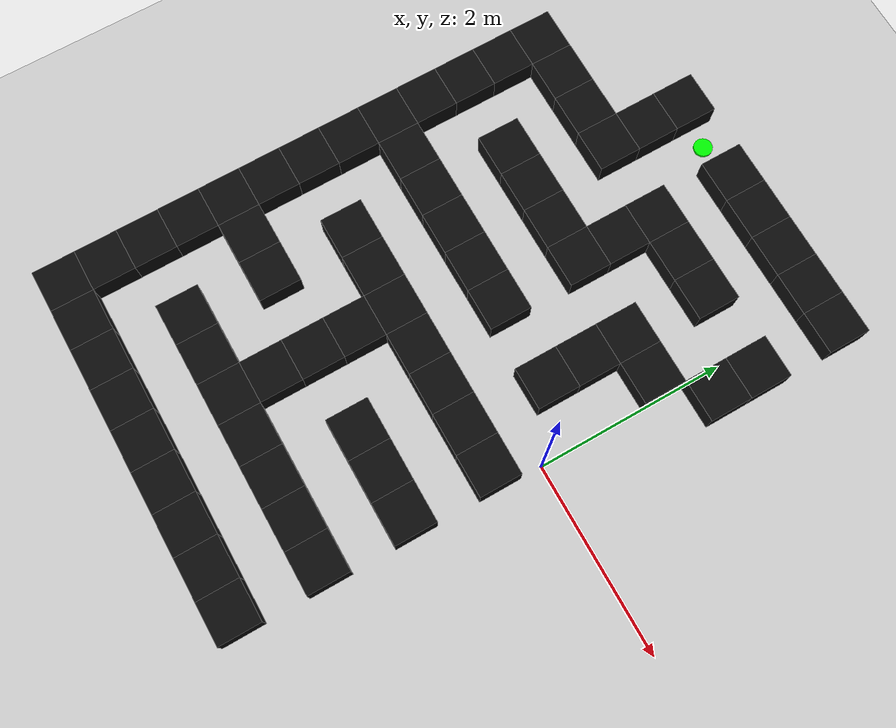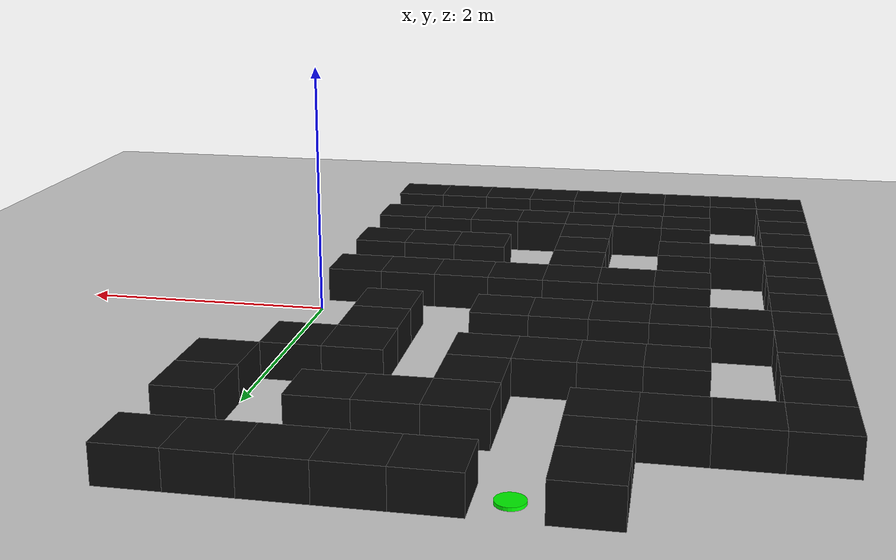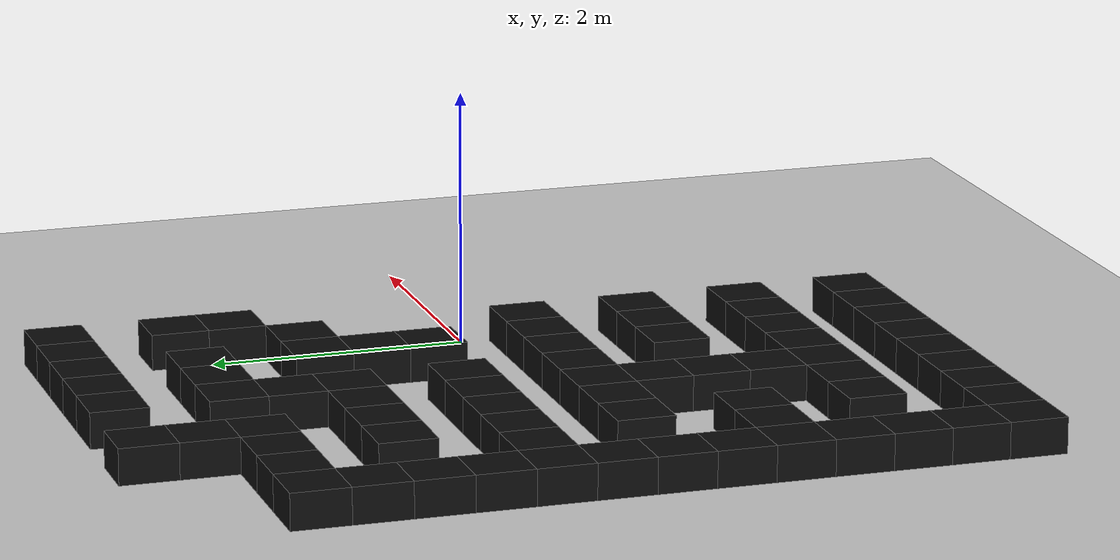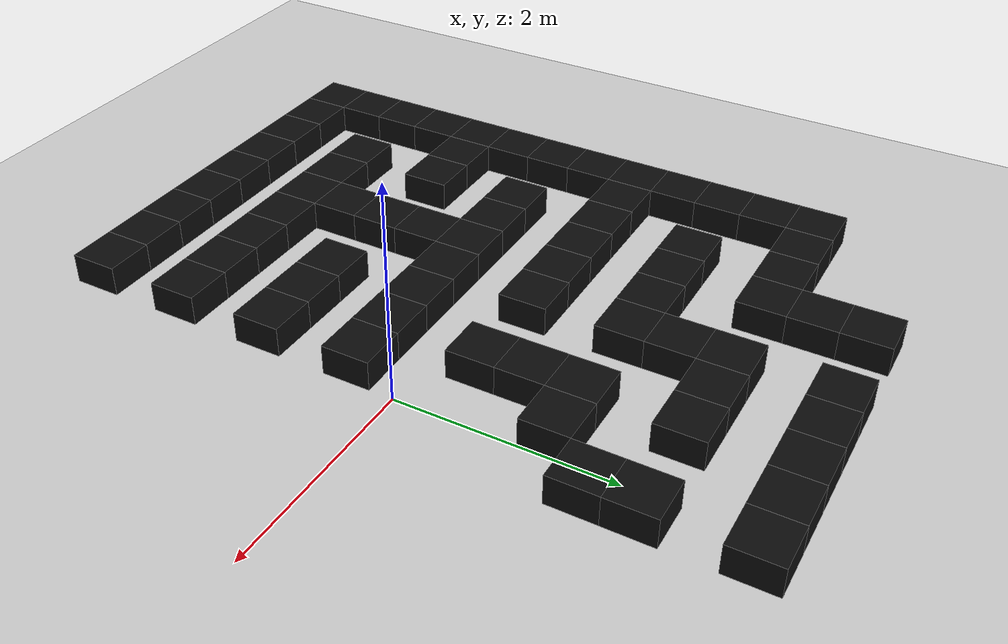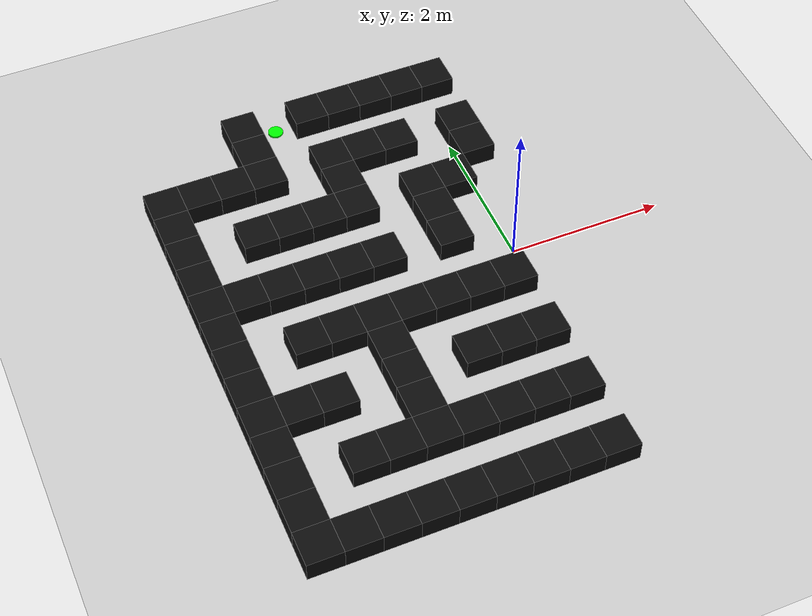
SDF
<sdf version="1.9">
 <world name="complex_maze_world">
  <model name="ground_plane">
   <static>true</static>
   <link name="link">
    <collision name="collision">
     <geometry><plane><normal>0 0 1</normal><size>30 30</size></plane></geometry>
    </collision>
    <visual name="visual">
     <geometry><plane><normal>0 0 1</normal><size>30 30</size></plane></geometry>
     <material><ambient>0.82 0.82 0.82 1</ambient><diffuse>0.82 0.82 0.82 1</diffuse></material>
    </visual>
   </link>
  </model>
  <model name="wall_0">
   <static>true</static>
   <pose>-2.475 3.150 0.140 0 0 0</pose>
   <link name="link">
    <collision name="collision"><geometry><box><size>0.450 0.450 0.280</size></box></geometry></collision>
    <visual name="visual">
     <geometry><box><size>0.450 0.450 0.280</size></box></geometry>
     <material><ambient>0.05 0.05 0.05 1</ambient><diffuse>0.05 0.05 0.05 1</diffuse></material>
    </visual>
   </link>
  </model>
  <model name="start_marker">
   <static>true</static>
   <pose>-2.025 3.150 0.012 0 0 0</pose>
   <link name="link">
    <visual name="visual">
     <geometry><cylinder><radius>0.099</radius><length>0.024</length></cylinder></geometry>
     <material><ambient>0 1 0 1</ambient><diffuse>0 1 0 1</diffuse></material>
    </visual>
   </link>
  </model>
  <model name="wall_1">
   <static>true</static>
   <pose>-1.575 3.150 0.140 0 0 0</pose>
   <link name="link">
    <collision name="collision"><geometry><box><size>0.450 0.450 0.280</size></box></geometry></collision>
    <visual name="visual">
     <geometry><box><size>0.450 0.450 0.280</size></box></geometry>
     <material><ambient>0.05 0.05 0.05 1</ambient><diffuse>0.05 0.05 0.05 1</diffuse></material>
    </visual>
   </link>
  </model>
  <model name="wall_2">
   <static>true</static>
   <pose>-1.125 3.150 0.140 0 0 0</pose>
   <link name="link">
    <collision name="collision"><geometry><box><size>0.450 0.450 0.280</size></box></geometry></collision>
    <visual name="visual">
     <geometry><box><size>0.450 0.450 0.280</size></box></geometry>
     <material><ambient>0.05 0.05 0.05 1</ambient><diffuse>0.05 0.05 0.05 1</diffuse></material>
    </visual>
   </link>
  </model>
  <model name="wall_3">
   <static>true</static>
   <pose>-0.675 3.150 0.140 0 0 0</pose>
   <link name="link">
    <collision name="collision"><geometry><box><size>0.450 0.450 0.280</size></box></geometry></collision>
    <visual name="visual">
     <geometry><box><size>0.450 0.450 0.280</size></box></geometry>
     <material><ambient>0.05 0.05 0.05 1</ambient><diffuse>0.05 0.05 0.05 1</diffuse></material>
    </visual>
   </link>
  </model>
  <model name="wall_4">
   <static>true</static>
   <pose>-0.225 3.150 0.140 0 0 0</pose>
   <link name="link">
    <collision name="collision"><geometry><box><size>0.450 0.450 0.280</size></box></geometry></collision>
    <visual name="visual">
     <geometry><box><size>0.450 0.450 0.280</size></box></geometry>
     <material><ambient>0.05 0.05 0.05 1</ambient><diffuse>0.05 0.05 0.05 1</diffuse></material>
    </visual>
   </link>
  </model>
  <model name="wall_5">
   <static>true</static>
   <pose>0.225 3.150 0.140 0 0 0</pose>
   <link name="link">
    <collision name="collision"><geometry><box><size>0.450 0.450 0.280</size></box></geometry></collision>
    <visual name="visual">
     <geometry><box><size>0.450 0.450 0.280</size></box></geometry>
     <material><ambient>0.05 0.05 0.05 1</ambient><diffuse>0.05 0.05 0.05 1</diffuse></material>
    </visual>
   </link>
  </model>
  <model name="wall_14">
   <static>true</static>
   <pose>-2.475 2.700 0.140 0 0 0</pose>
   <link name="link">
    <collision name="collision"><geometry><box><size>0.450 0.450 0.280</size></box></geometry></collision>
    <visual name="visual">
     <geometry><box><size>0.450 0.450 0.280</size></box></geometry>
     <material><ambient>0.05 0.05 0.05 1</ambient><diffuse>0.05 0.05 0.05 1</diffuse></material>
    </visual>
   </link>
  </model>
  <model name="wall_18">
   <static>true</static>
   <pose>-3.825 2.250 0.140 0 0 0</pose>
   <link name="link">
    <collision name="collision"><geometry><box><size>0.450 0.450 0.280</size></box></geometry></collision>
    <visual name="visual">
     <geometry><box><size>0.450 0.450 0.280</size></box></geometry>
     <material><ambient>0.05 0.05 0.05 1</ambient><diffuse>0.05 0.05 0.05 1</diffuse></material>
    </visual>
   </link>
  </model>
  <model name="wall_19">
   <static>true</static>
   <pose>-3.375 2.250 0.140 0 0 0</pose>
   <link name="link">
    <collision name="collision"><geometry><box><size>0.450 0.450 0.280</size></box></geometry></collision>
    <visual name="visual">
     <geometry><box><size>0.450 0.450 0.280</size></box></geometry>
     <material><ambient>0.05 0.05 0.05 1</ambient><diffuse>0.05 0.05 0.05 1</diffuse></material>
    </visual>
   </link>
  </model>
  <model name="wall_20">
   <static>true</static>
   <pose>-2.925 2.250 0.140 0 0 0</pose>
   <link name="link">
    <collision name="collision"><geometry><box><size>0.450 0.450 0.280</size></box></geometry></collision>
    <visual name="visual">
     <geometry><box><size>0.450 0.450 0.280</size></box></geometry>
     <material><ambient>0.05 0.05 0.05 1</ambient><diffuse>0.05 0.05 0.05 1</diffuse></material>
    </visual>
   </link>
  </model>
  <model name="wall_21">
   <static>true</static>
   <pose>-2.475 2.250 0.140 0 0 0</pose>
   <link name="link">
    <collision name="collision"><geometry><box><size>0.450 0.450 0.280</size></box></geometry></collision>
    <visual name="visual">
     <geometry><box><size>0.450 0.450 0.280</size></box></geometry>
     <material><ambient>0.05 0.05 0.05 1</ambient><diffuse>0.05 0.05 0.05 1</diffuse></material>
    </visual>
   </link>
  </model>
  <model name="wall_22">
   <static>true</static>
   <pose>-1.575 2.250 0.140 0 0 0</pose>
   <link name="link">
    <collision name="collision"><geometry><box><size>0.450 0.450 0.280</size></box></geometry></collision>
    <visual name="visual">
     <geometry><box><size>0.450 0.450 0.280</size></box></geometry>
     <material><ambient>0.05 0.05 0.05 1</ambient><diffuse>0.05 0.05 0.05 1</diffuse></material>
    </visual>
   </link>
  </model>
  <model name="wall_23">
   <static>true</static>
   <pose>-1.125 2.250 0.140 0 0 0</pose>
   <link name="link">
    <collision name="collision"><geometry><box><size>0.450 0.450 0.280</size></box></geometry></collision>
    <visual name="visual">
     <geometry><box><size>0.450 0.450 0.280</size></box></geometry>
     <material><ambient>0.05 0.05 0.05 1</ambient><diffuse>0.05 0.05 0.05 1</diffuse></material>
    </visual>
   </link>
  </model>
  <model name="wall_24">
   <static>true</static>
   <pose>-0.675 2.250 0.140 0 0 0</pose>
   <link name="link">
    <collision name="collision"><geometry><box><size>0.450 0.450 0.280</size></box></geometry></collision>
    <visual name="visual">
     <geometry><box><size>0.450 0.450 0.280</size></box></geometry>
     <material><ambient>0.05 0.05 0.05 1</ambient><diffuse>0.05 0.05 0.05 1</diffuse></material>
    </visual>
   </link>
  </model>
  <model name="wall_25">
   <static>true</static>
   <pose>0.225 2.250 0.140 0 0 0</pose>
   <link name="link">
    <collision name="collision"><geometry><box><size>0.450 0.450 0.280</size></box></geometry></collision>
    <visual name="visual">
     <geometry><box><size>0.450 0.450 0.280</size></box></geometry>
     <material><ambient>0.05 0.05 0.05 1</ambient><diffuse>0.05 0.05 0.05 1</diffuse></material>
    </visual>
   </link>
  </model>
  <model name="wall_31">
   <static>true</static>
   <pose>-3.825 1.800 0.140 0 0 0</pose>
   <link name="link">
    <collision name="collision"><geometry><box><size>0.450 0.450 0.280</size></box></geometry></collision>
    <visual name="visual">
     <geometry><box><size>0.450 0.450 0.280</size></box></geometry>
     <material><ambient>0.05 0.05 0.05 1</ambient><diffuse>0.05 0.05 0.05 1</diffuse></material>
    </visual>
   </link>
  </model>
  <model name="wall_32">
   <static>true</static>
   <pose>-1.575 1.800 0.140 0 0 0</pose>
   <link name="link">
    <collision name="collision"><geometry><box><size>0.450 0.450 0.280</size></box></geometry></collision>
    <visual name="visual">
     <geometry><box><size>0.450 0.450 0.280</size></box></geometry>
     <material><ambient>0.05 0.05 0.05 1</ambient><diffuse>0.05 0.05 0.05 1</diffuse></material>
    </visual>
   </link>
  </model>
  <model name="wall_33">
   <static>true</static>
   <pose>0.225 1.800 0.140 0 0 0</pose>
   <link name="link">
    <collision name="collision"><geometry><box><size>0.450 0.450 0.280</size></box></geometry></collision>
    <visual name="visual">
     <geometry><box><size>0.450 0.450 0.280</size></box></geometry>
     <material><ambient>0.05 0.05 0.05 1</ambient><diffuse>0.05 0.05 0.05 1</diffuse></material>
    </visual>
   </link>
  </model>
  <model name="wall_35">
   <static>true</static>
   <pose>-3.825 1.350 0.140 0 0 0</pose>
   <link name="link">
    <collision name="collision"><geometry><box><size>0.450 0.450 0.280</size></box></geometry></collision>
    <visual name="visual">
     <geometry><box><size>0.450 0.450 0.280</size></box></geometry>
     <material><ambient>0.05 0.05 0.05 1</ambient><diffuse>0.05 0.05 0.05 1</diffuse></material>
    </visual>
   </link>
  </model>
  <model name="wall_36">
   <static>true</static>
   <pose>-2.925 1.350 0.140 0 0 0</pose>
   <link name="link">
    <collision name="collision"><geometry><box><size>0.450 0.450 0.280</size></box></geometry></collision>
    <visual name="visual">
     <geometry><box><size>0.450 0.450 0.280</size></box></geometry>
     <material><ambient>0.05 0.05 0.05 1</ambient><diffuse>0.05 0.05 0.05 1</diffuse></material>
    </visual>
   </link>
  </model>
  <model name="wall_37">
   <static>true</static>
   <pose>-2.475 1.350 0.140 0 0 0</pose>
   <link name="link">
    <collision name="collision"><geometry><box><size>0.450 0.450 0.280</size></box></geometry></collision>
    <visual name="visual">
     <geometry><box><size>0.450 0.450 0.280</size></box></geometry>
     <material><ambient>0.05 0.05 0.05 1</ambient><diffuse>0.05 0.05 0.05 1</diffuse></material>
    </visual>
   </link>
  </model>
  <model name="wall_38">
   <static>true</static>
   <pose>-2.025 1.350 0.140 0 0 0</pose>
   <link name="link">
    <collision name="collision"><geometry><box><size>0.450 0.450 0.280</size></box></geometry></collision>
    <visual name="visual">
     <geometry><box><size>0.450 0.450 0.280</size></box></geometry>
     <material><ambient>0.05 0.05 0.05 1</ambient><diffuse>0.05 0.05 0.05 1</diffuse></material>
    </visual>
   </link>
  </model>
  <model name="wall_39">
   <static>true</static>
   <pose>-1.575 1.350 0.140 0 0 0</pose>
   <link name="link">
    <collision name="collision"><geometry><box><size>0.450 0.450 0.280</size></box></geometry></collision>
    <visual name="visual">
     <geometry><box><size>0.450 0.450 0.280</size></box></geometry>
     <material><ambient>0.05 0.05 0.05 1</ambient><diffuse>0.05 0.05 0.05 1</diffuse></material>
    </visual>
   </link>
  </model>
  <model name="wall_40">
   <static>true</static>
   <pose>-0.675 1.350 0.140 0 0 0</pose>
   <link name="link">
    <collision name="collision"><geometry><box><size>0.450 0.450 0.280</size></box></geometry></collision>
    <visual name="visual">
     <geometry><box><size>0.450 0.450 0.280</size></box></geometry>
     <material><ambient>0.05 0.05 0.05 1</ambient><diffuse>0.05 0.05 0.05 1</diffuse></material>
    </visual>
   </link>
  </model>
  <model name="wall_41">
   <static>true</static>
   <pose>-0.225 1.350 0.140 0 0 0</pose>
   <link name="link">
    <collision name="collision"><geometry><box><size>0.450 0.450 0.280</size></box></geometry></collision>
    <visual name="visual">
     <geometry><box><size>0.450 0.450 0.280</size></box></geometry>
     <material><ambient>0.05 0.05 0.05 1</ambient><diffuse>0.05 0.05 0.05 1</diffuse></material>
    </visual>
   </link>
  </model>
  <model name="wall_49">
   <static>true</static>
   <pose>-3.825 0.900 0.140 0 0 0</pose>
   <link name="link">
    <collision name="collision"><geometry><box><size>0.450 0.450 0.280</size></box></geometry></collision>
    <visual name="visual">
     <geometry><box><size>0.450 0.450 0.280</size></box></geometry>
     <material><ambient>0.05 0.05 0.05 1</ambient><diffuse>0.05 0.05 0.05 1</diffuse></material>
    </visual>
   </link>
  </model>
  <model name="wall_50">
   <static>true</static>
   <pose>-0.675 0.900 0.140 0 0 0</pose>
   <link name="link">
    <collision name="collision"><geometry><box><size>0.450 0.450 0.280</size></box></geometry></collision>
    <visual name="visual">
     <geometry><box><size>0.450 0.450 0.280</size></box></geometry>
     <material><ambient>0.05 0.05 0.05 1</ambient><diffuse>0.05 0.05 0.05 1</diffuse></material>
    </visual>
   </link>
  </model>
  <model name="wall_53">
   <static>true</static>
   <pose>-3.825 0.450 0.140 0 0 0</pose>
   <link name="link">
    <collision name="collision"><geometry><box><size>0.450 0.450 0.280</size></box></geometry></collision>
    <visual name="visual">
     <geometry><box><size>0.450 0.450 0.280</size></box></geometry>
     <material><ambient>0.05 0.05 0.05 1</ambient><diffuse>0.05 0.05 0.05 1</diffuse></material>
    </visual>
   </link>
  </model>
  <model name="wall_54">
   <static>true</static>
   <pose>-3.375 0.450 0.140 0 0 0</pose>
   <link name="link">
    <collision name="collision"><geometry><box><size>0.450 0.450 0.280</size></box></geometry></collision>
    <visual name="visual">
     <geometry><box><size>0.450 0.450 0.280</size></box></geometry>
     <material><ambient>0.05 0.05 0.05 1</ambient><diffuse>0.05 0.05 0.05 1</diffuse></material>
    </visual>
   </link>
  </model>
  <model name="wall_55">
   <static>true</static>
   <pose>-2.925 0.450 0.140 0 0 0</pose>
   <link name="link">
    <collision name="collision"><geometry><box><size>0.450 0.450 0.280</size></box></geometry></collision>
    <visual name="visual">
     <geometry><box><size>0.450 0.450 0.280</size></box></geometry>
     <material><ambient>0.05 0.05 0.05 1</ambient><diffuse>0.05 0.05 0.05 1</diffuse></material>
    </visual>
   </link>
  </model>
  <model name="wall_56">
   <static>true</static>
   <pose>-2.475 0.450 0.140 0 0 0</pose>
   <link name="link">
    <collision name="collision"><geometry><box><size>0.450 0.450 0.280</size></box></geometry></collision>
    <visual name="visual">
     <geometry><box><size>0.450 0.450 0.280</size></box></geometry>
     <material><ambient>0.05 0.05 0.05 1</ambient><diffuse>0.05 0.05 0.05 1</diffuse></material>
    </visual>
   </link>
  </model>
  <model name="wall_57">
   <static>true</static>
   <pose>-2.025 0.450 0.140 0 0 0</pose>
   <link name="link">
    <collision name="collision"><geometry><box><size>0.450 0.450 0.280</size></box></geometry></collision>
    <visual name="visual">
     <geometry><box><size>0.450 0.450 0.280</size></box></geometry>
     <material><ambient>0.05 0.05 0.05 1</ambient><diffuse>0.05 0.05 0.05 1</diffuse></material>
    </visual>
   </link>
  </model>
  <model name="wall_58">
   <static>true</static>
   <pose>-1.575 0.450 0.140 0 0 0</pose>
   <link name="link">
    <collision name="collision"><geometry><box><size>0.450 0.450 0.280</size></box></geometry></collision>
    <visual name="visual">
     <geometry><box><size>0.450 0.450 0.280</size></box></geometry>
     <material><ambient>0.05 0.05 0.05 1</ambient><diffuse>0.05 0.05 0.05 1</diffuse></material>
    </visual>
   </link>
  </model>
  <model name="wall_59">
   <static>true</static>
   <pose>-0.675 0.450 0.140 0 0 0</pose>
   <link name="link">
    <collision name="collision"><geometry><box><size>0.450 0.450 0.280</size></box></geometry></collision>
    <visual name="visual">
     <geometry><box><size>0.450 0.450 0.280</size></box></geometry>
     <material><ambient>0.05 0.05 0.05 1</ambient><diffuse>0.05 0.05 0.05 1</diffuse></material>
    </visual>
   </link>
  </model>
  <model name="wall_68">
   <static>true</static>
   <pose>-3.825 0.000 0.140 0 0 0</pose>
   <link name="link">
    <collision name="collision"><geometry><box><size>0.450 0.450 0.280</size></box></geometry></collision>
    <visual name="visual">
     <geometry><box><size>0.450 0.450 0.280</size></box></geometry>
     <material><ambient>0.05 0.05 0.05 1</ambient><diffuse>0.05 0.05 0.05 1</diffuse></material>
    </visual>
   </link>
  </model>
  <model name="wall_71">
   <static>true</static>
   <pose>-3.825 -0.450 0.140 0 0 0</pose>
   <link name="link">
    <collision name="collision"><geometry><box><size>0.450 0.450 0.280</size></box></geometry></collision>
    <visual name="visual">
     <geometry><box><size>0.450 0.450 0.280</size></box></geometry>
     <material><ambient>0.05 0.05 0.05 1</ambient><diffuse>0.05 0.05 0.05 1</diffuse></material>
    </visual>
   </link>
  </model>
  <model name="wall_72">
   <static>true</static>
   <pose>-2.925 -0.450 0.140 0 0 0</pose>
   <link name="link">
    <collision name="collision"><geometry><box><size>0.450 0.450 0.280</size></box></geometry></collision>
    <visual name="visual">
     <geometry><box><size>0.450 0.450 0.280</size></box></geometry>
     <material><ambient>0.05 0.05 0.05 1</ambient><diffuse>0.05 0.05 0.05 1</diffuse></material>
    </visual>
   </link>
  </model>
  <model name="wall_73">
   <static>true</static>
   <pose>-2.475 -0.450 0.140 0 0 0</pose>
   <link name="link">
    <collision name="collision"><geometry><box><size>0.450 0.450 0.280</size></box></geometry></collision>
    <visual name="visual">
     <geometry><box><size>0.450 0.450 0.280</size></box></geometry>
     <material><ambient>0.05 0.05 0.05 1</ambient><diffuse>0.05 0.05 0.05 1</diffuse></material>
    </visual>
   </link>
  </model>
  <model name="wall_74">
   <static>true</static>
   <pose>-2.025 -0.450 0.140 0 0 0</pose>
   <link name="link">
    <collision name="collision"><geometry><box><size>0.450 0.450 0.280</size></box></geometry></collision>
    <visual name="visual">
     <geometry><box><size>0.450 0.450 0.280</size></box></geometry>
     <material><ambient>0.05 0.05 0.05 1</ambient><diffuse>0.05 0.05 0.05 1</diffuse></material>
    </visual>
   </link>
  </model>
  <model name="wall_75">
   <static>true</static>
   <pose>-1.575 -0.450 0.140 0 0 0</pose>
   <link name="link">
    <collision name="collision"><geometry><box><size>0.450 0.450 0.280</size></box></geometry></collision>
    <visual name="visual">
     <geometry><box><size>0.450 0.450 0.280</size></box></geometry>
     <material><ambient>0.05 0.05 0.05 1</ambient><diffuse>0.05 0.05 0.05 1</diffuse></material>
    </visual>
   </link>
  </model>
  <model name="wall_76">
   <static>true</static>
   <pose>-1.125 -0.450 0.140 0 0 0</pose>
   <link name="link">
    <collision name="collision"><geometry><box><size>0.450 0.450 0.280</size></box></geometry></collision>
    <visual name="visual">
     <geometry><box><size>0.450 0.450 0.280</size></box></geometry>
     <material><ambient>0.05 0.05 0.05 1</ambient><diffuse>0.05 0.05 0.05 1</diffuse></material>
    </visual>
   </link>
  </model>
  <model name="wall_77">
   <static>true</static>
   <pose>-0.675 -0.450 0.140 0 0 0</pose>
   <link name="link">
    <collision name="collision"><geometry><box><size>0.450 0.450 0.280</size></box></geometry></collision>
    <visual name="visual">
     <geometry><box><size>0.450 0.450 0.280</size></box></geometry>
     <material><ambient>0.05 0.05 0.05 1</ambient><diffuse>0.05 0.05 0.05 1</diffuse></material>
    </visual>
   </link>
  </model>
  <model name="wall_78">
   <static>true</static>
   <pose>-0.225 -0.450 0.140 0 0 0</pose>
   <link name="link">
    <collision name="collision"><geometry><box><size>0.450 0.450 0.280</size></box></geometry></collision>
    <visual name="visual">
     <geometry><box><size>0.450 0.450 0.280</size></box></geometry>
     <material><ambient>0.05 0.05 0.05 1</ambient><diffuse>0.05 0.05 0.05 1</diffuse></material>
    </visual>
   </link>
  </model>
  <model name="wall_85">
   <static>true</static>
   <pose>-3.825 -0.900 0.140 0 0 0</pose>
   <link name="link">
    <collision name="collision"><geometry><box><size>0.450 0.450 0.280</size></box></geometry></collision>
    <visual name="visual">
     <geometry><box><size>0.450 0.450 0.280</size></box></geometry>
     <material><ambient>0.05 0.05 0.05 1</ambient><diffuse>0.05 0.05 0.05 1</diffuse></material>
    </visual>
   </link>
  </model>
  <model name="wall_86">
   <static>true</static>
   <pose>-2.025 -0.900 0.140 0 0 0</pose>
   <link name="link">
    <collision name="collision"><geometry><box><size>0.450 0.450 0.280</size></box></geometry></collision>
    <visual name="visual">
     <geometry><box><size>0.450 0.450 0.280</size></box></geometry>
     <material><ambient>0.05 0.05 0.05 1</ambient><diffuse>0.05 0.05 0.05 1</diffuse></material>
    </visual>
   </link>
  </model>
  <model name="wall_91">
   <static>true</static>
   <pose>-3.825 -1.350 0.140 0 0 0</pose>
   <link name="link">
    <collision name="collision"><geometry><box><size>0.450 0.450 0.280</size></box></geometry></collision>
    <visual name="visual">
     <geometry><box><size>0.450 0.450 0.280</size></box></geometry>
     <material><ambient>0.05 0.05 0.05 1</ambient><diffuse>0.05 0.05 0.05 1</diffuse></material>
    </visual>
   </link>
  </model>
  <model name="wall_92">
   <static>true</static>
   <pose>-3.375 -1.350 0.140 0 0 0</pose>
   <link name="link">
    <collision name="collision"><geometry><box><size>0.450 0.450 0.280</size></box></geometry></collision>
    <visual name="visual">
     <geometry><box><size>0.450 0.450 0.280</size></box></geometry>
     <material><ambient>0.05 0.05 0.05 1</ambient><diffuse>0.05 0.05 0.05 1</diffuse></material>
    </visual>
   </link>
  </model>
  <model name="wall_93">
   <static>true</static>
   <pose>-2.925 -1.350 0.140 0 0 0</pose>
   <link name="link">
    <collision name="collision"><geometry><box><size>0.450 0.450 0.280</size></box></geometry></collision>
    <visual name="visual">
     <geometry><box><size>0.450 0.450 0.280</size></box></geometry>
     <material><ambient>0.05 0.05 0.05 1</ambient><diffuse>0.05 0.05 0.05 1</diffuse></material>
    </visual>
   </link>
  </model>
  <model name="wall_94">
   <static>true</static>
   <pose>-2.025 -1.350 0.140 0 0 0</pose>
   <link name="link">
    <collision name="collision"><geometry><box><size>0.450 0.450 0.280</size></box></geometry></collision>
    <visual name="visual">
     <geometry><box><size>0.450 0.450 0.280</size></box></geometry>
     <material><ambient>0.05 0.05 0.05 1</ambient><diffuse>0.05 0.05 0.05 1</diffuse></material>
    </visual>
   </link>
  </model>
  <model name="wall_95">
   <static>true</static>
   <pose>-1.125 -1.350 0.140 0 0 0</pose>
   <link name="link">
    <collision name="collision"><geometry><box><size>0.450 0.450 0.280</size></box></geometry></collision>
    <visual name="visual">
     <geometry><box><size>0.450 0.450 0.280</size></box></geometry>
     <material><ambient>0.05 0.05 0.05 1</ambient><diffuse>0.05 0.05 0.05 1</diffuse></material>
    </visual>
   </link>
  </model>
  <model name="wall_96">
   <static>true</static>
   <pose>-0.675 -1.350 0.140 0 0 0</pose>
   <link name="link">
    <collision name="collision"><geometry><box><size>0.450 0.450 0.280</size></box></geometry></collision>
    <visual name="visual">
     <geometry><box><size>0.450 0.450 0.280</size></box></geometry>
     <material><ambient>0.05 0.05 0.05 1</ambient><diffuse>0.05 0.05 0.05 1</diffuse></material>
    </visual>
   </link>
  </model>
  <model name="wall_97">
   <static>true</static>
   <pose>-0.225 -1.350 0.140 0 0 0</pose>
   <link name="link">
    <collision name="collision"><geometry><box><size>0.450 0.450 0.280</size></box></geometry></collision>
    <visual name="visual">
     <geometry><box><size>0.450 0.450 0.280</size></box></geometry>
     <material><ambient>0.05 0.05 0.05 1</ambient><diffuse>0.05 0.05 0.05 1</diffuse></material>
    </visual>
   </link>
  </model>
  <model name="wall_105">
   <static>true</static>
   <pose>-3.825 -1.800 0.140 0 0 0</pose>
   <link name="link">
    <collision name="collision"><geometry><box><size>0.450 0.450 0.280</size></box></geometry></collision>
    <visual name="visual">
     <geometry><box><size>0.450 0.450 0.280</size></box></geometry>
     <material><ambient>0.05 0.05 0.05 1</ambient><diffuse>0.05 0.05 0.05 1</diffuse></material>
    </visual>
   </link>
  </model>
  <model name="wall_106">
   <static>true</static>
   <pose>-2.025 -1.800 0.140 0 0 0</pose>
   <link name="link">
    <collision name="collision"><geometry><box><size>0.450 0.450 0.280</size></box></geometry></collision>
    <visual name="visual">
     <geometry><box><size>0.450 0.450 0.280</size></box></geometry>
     <material><ambient>0.05 0.05 0.05 1</ambient><diffuse>0.05 0.05 0.05 1</diffuse></material>
    </visual>
   </link>
  </model>
  <model name="wall_108">
   <static>true</static>
   <pose>-3.825 -2.250 0.140 0 0 0</pose>
   <link name="link">
    <collision name="collision"><geometry><box><size>0.450 0.450 0.280</size></box></geometry></collision>
    <visual name="visual">
     <geometry><box><size>0.450 0.450 0.280</size></box></geometry>
     <material><ambient>0.05 0.05 0.05 1</ambient><diffuse>0.05 0.05 0.05 1</diffuse></material>
    </visual>
   </link>
  </model>
  <model name="wall_109">
   <static>true</static>
   <pose>-2.925 -2.250 0.140 0 0 0</pose>
   <link name="link">
    <collision name="collision"><geometry><box><size>0.450 0.450 0.280</size></box></geometry></collision>
    <visual name="visual">
     <geometry><box><size>0.450 0.450 0.280</size></box></geometry>
     <material><ambient>0.05 0.05 0.05 1</ambient><diffuse>0.05 0.05 0.05 1</diffuse></material>
    </visual>
   </link>
  </model>
  <model name="wall_110">
   <static>true</static>
   <pose>-2.475 -2.250 0.140 0 0 0</pose>
   <link name="link">
    <collision name="collision"><geometry><box><size>0.450 0.450 0.280</size></box></geometry></collision>
    <visual name="visual">
     <geometry><box><size>0.450 0.450 0.280</size></box></geometry>
     <material><ambient>0.05 0.05 0.05 1</ambient><diffuse>0.05 0.05 0.05 1</diffuse></material>
    </visual>
   </link>
  </model>
  <model name="wall_111">
   <static>true</static>
   <pose>-2.025 -2.250 0.140 0 0 0</pose>
   <link name="link">
    <collision name="collision"><geometry><box><size>0.450 0.450 0.280</size></box></geometry></collision>
    <visual name="visual">
     <geometry><box><size>0.450 0.450 0.280</size></box></geometry>
     <material><ambient>0.05 0.05 0.05 1</ambient><diffuse>0.05 0.05 0.05 1</diffuse></material>
    </visual>
   </link>
  </model>
  <model name="wall_112">
   <static>true</static>
   <pose>-1.575 -2.250 0.140 0 0 0</pose>
   <link name="link">
    <collision name="collision"><geometry><box><size>0.450 0.450 0.280</size></box></geometry></collision>
    <visual name="visual">
     <geometry><box><size>0.450 0.450 0.280</size></box></geometry>
     <material><ambient>0.05 0.05 0.05 1</ambient><diffuse>0.05 0.05 0.05 1</diffuse></material>
    </visual>
   </link>
  </model>
  <model name="wall_113">
   <static>true</static>
   <pose>-1.125 -2.250 0.140 0 0 0</pose>
   <link name="link">
    <collision name="collision"><geometry><box><size>0.450 0.450 0.280</size></box></geometry></collision>
    <visual name="visual">
     <geometry><box><size>0.450 0.450 0.280</size></box></geometry>
     <material><ambient>0.05 0.05 0.05 1</ambient><diffuse>0.05 0.05 0.05 1</diffuse></material>
    </visual>
   </link>
  </model>
  <model name="wall_114">
   <static>true</static>
   <pose>-0.675 -2.250 0.140 0 0 0</pose>
   <link name="link">
    <collision name="collision"><geometry><box><size>0.450 0.450 0.280</size></box></geometry></collision>
    <visual name="visual">
     <geometry><box><size>0.450 0.450 0.280</size></box></geometry>
     <material><ambient>0.05 0.05 0.05 1</ambient><diffuse>0.05 0.05 0.05 1</diffuse></material>
    </visual>
   </link>
  </model>
  <model name="wall_115">
   <static>true</static>
   <pose>-0.225 -2.250 0.140 0 0 0</pose>
   <link name="link">
    <collision name="collision"><geometry><box><size>0.450 0.450 0.280</size></box></geometry></collision>
    <visual name="visual">
     <geometry><box><size>0.450 0.450 0.280</size></box></geometry>
     <material><ambient>0.05 0.05 0.05 1</ambient><diffuse>0.05 0.05 0.05 1</diffuse></material>
    </visual>
   </link>
  </model>
  <model name="wall_125">
   <static>true</static>
   <pose>-3.825 -2.700 0.140 0 0 0</pose>
   <link name="link">
    <collision name="collision"><geometry><box><size>0.450 0.450 0.280</size></box></geometry></collision>
    <visual name="visual">
     <geometry><box><size>0.450 0.450 0.280</size></box></geometry>
     <material><ambient>0.05 0.05 0.05 1</ambient><diffuse>0.05 0.05 0.05 1</diffuse></material>
    </visual>
   </link>
  </model>
  <model name="wall_129">
   <static>true</static>
   <pose>-3.825 -3.150 0.140 0 0 0</pose>
   <link name="link">
    <collision name="collision"><geometry><box><size>0.450 0.450 0.280</size></box></geometry></collision>
    <visual name="visual">
     <geometry><box><size>0.450 0.450 0.280</size></box></geometry>
     <material><ambient>0.05 0.05 0.05 1</ambient><diffuse>0.05 0.05 0.05 1</diffuse></material>
    </visual>
   </link>
  </model>
  <model name="wall_130">
   <static>true</static>
   <pose>-3.375 -3.150 0.140 0 0 0</pose>
   <link name="link">
    <collision name="collision"><geometry><box><size>0.450 0.450 0.280</size></box></geometry></collision>
    <visual name="visual">
     <geometry><box><size>0.450 0.450 0.280</size></box></geometry>
     <material><ambient>0.05 0.05 0.05 1</ambient><diffuse>0.05 0.05 0.05 1</diffuse></material>
    </visual>
   </link>
  </model>
  <model name="wall_131">
   <static>true</static>
   <pose>-2.925 -3.150 0.140 0 0 0</pose>
   <link name="link">
    <collision name="collision"><geometry><box><size>0.450 0.450 0.280</size></box></geometry></collision>
    <visual name="visual">
     <geometry><box><size>0.450 0.450 0.280</size></box></geometry>
     <material><ambient>0.05 0.05 0.05 1</ambient><diffuse>0.05 0.05 0.05 1</diffuse></material>
    </visual>
   </link>
  </model>
  <model name="wall_132">
   <static>true</static>
   <pose>-2.475 -3.150 0.140 0 0 0</pose>
   <link name="link">
    <collision name="collision"><geometry><box><size>0.450 0.450 0.280</size></box></geometry></collision>
    <visual name="visual">
     <geometry><box><size>0.450 0.450 0.280</size></box></geometry>
     <material><ambient>0.05 0.05 0.05 1</ambient><diffuse>0.05 0.05 0.05 1</diffuse></material>
    </visual>
   </link>
  </model>
  <model name="wall_133">
   <static>true</static>
   <pose>-2.025 -3.150 0.140 0 0 0</pose>
   <link name="link">
    <collision name="collision"><geometry><box><size>0.450 0.450 0.280</size></box></geometry></collision>
    <visual name="visual">
     <geometry><box><size>0.450 0.450 0.280</size></box></geometry>
     <material><ambient>0.05 0.05 0.05 1</ambient><diffuse>0.05 0.05 0.05 1</diffuse></material>
    </visual>
   </link>
  </model>
  <model name="wall_134">
   <static>true</static>
   <pose>-1.575 -3.150 0.140 0 0 0</pose>
   <link name="link">
    <collision name="collision"><geometry><box><size>0.450 0.450 0.280</size></box></geometry></collision>
    <visual name="visual">
     <geometry><box><size>0.450 0.450 0.280</size></box></geometry>
     <material><ambient>0.05 0.05 0.05 1</ambient><diffuse>0.05 0.05 0.05 1</diffuse></material>
    </visual>
   </link>
  </model>
  <model name="wall_135">
   <static>true</static>
   <pose>-1.125 -3.150 0.140 0 0 0</pose>
   <link name="link">
    <collision name="collision"><geometry><box><size>0.450 0.450 0.280</size></box></geometry></collision>
    <visual name="visual">
     <geometry><box><size>0.450 0.450 0.280</size></box></geometry>
     <material><ambient>0.05 0.05 0.05 1</ambient><diffuse>0.05 0.05 0.05 1</diffuse></material>
    </visual>
   </link>
  </model>
  <model name="wall_136">
   <static>true</static>
   <pose>-0.675 -3.150 0.140 0 0 0</pose>
   <link name="link">
    <collision name="collision"><geometry><box><size>0.450 0.450 0.280</size></box></geometry></collision>
    <visual name="visual">
     <geometry><box><size>0.450 0.450 0.280</size></box></geometry>
     <material><ambient>0.05 0.05 0.05 1</ambient><diffuse>0.05 0.05 0.05 1</diffuse></material>
    </visual>
   </link>
  </model>
  <model name="wall_137">
   <static>true</static>
   <pose>-0.225 -3.150 0.140 0 0 0</pose>
   <link name="link">
    <collision name="collision"><geometry><box><size>0.450 0.450 0.280</size></box></geometry></collision>
    <visual name="visual">
     <geometry><box><size>0.450 0.450 0.280</size></box></geometry>
     <material><ambient>0.05 0.05 0.05 1</ambient><diffuse>0.05 0.05 0.05 1</diffuse></material>
    </visual>
   </link>
  </model>
 </world>
</sdf>
